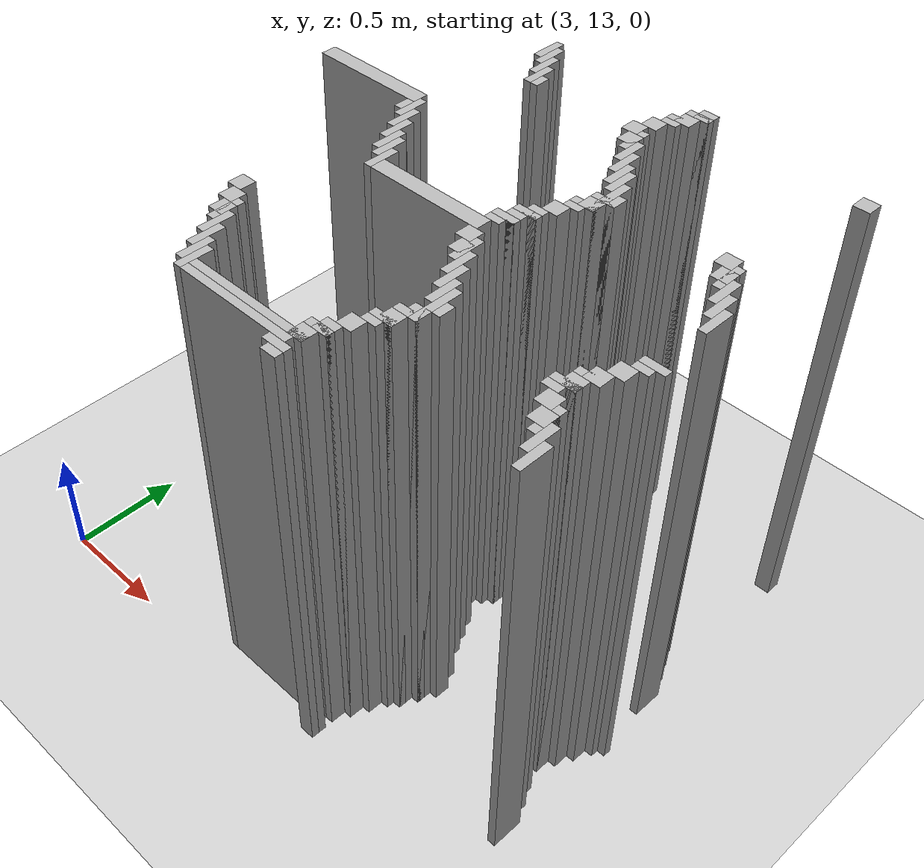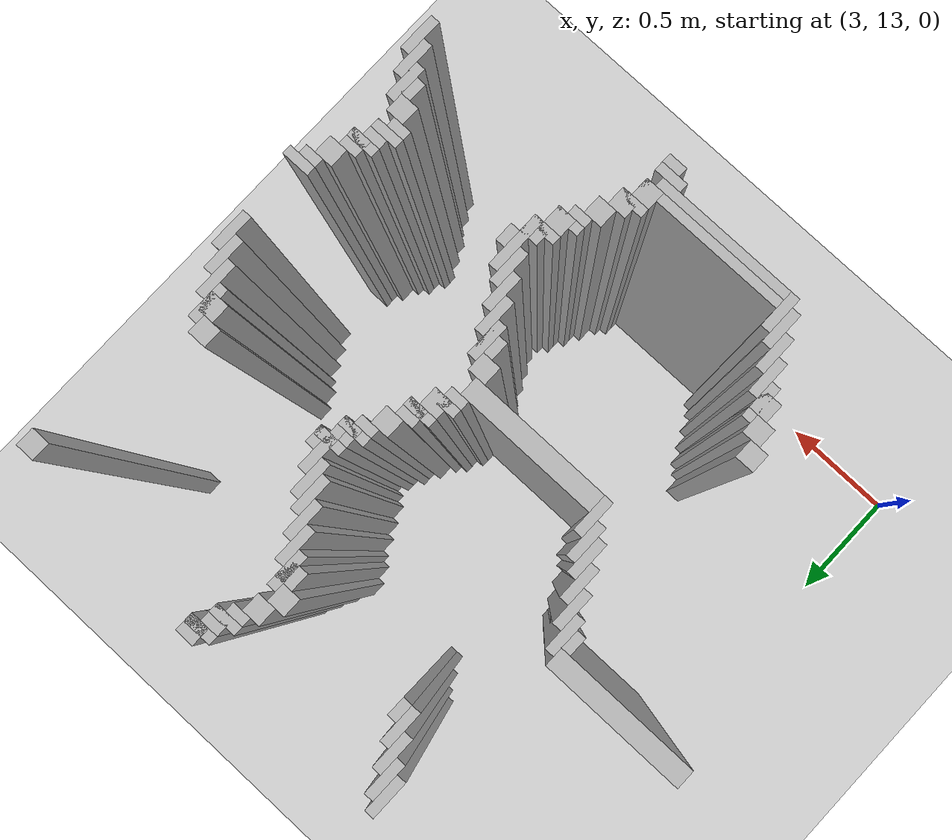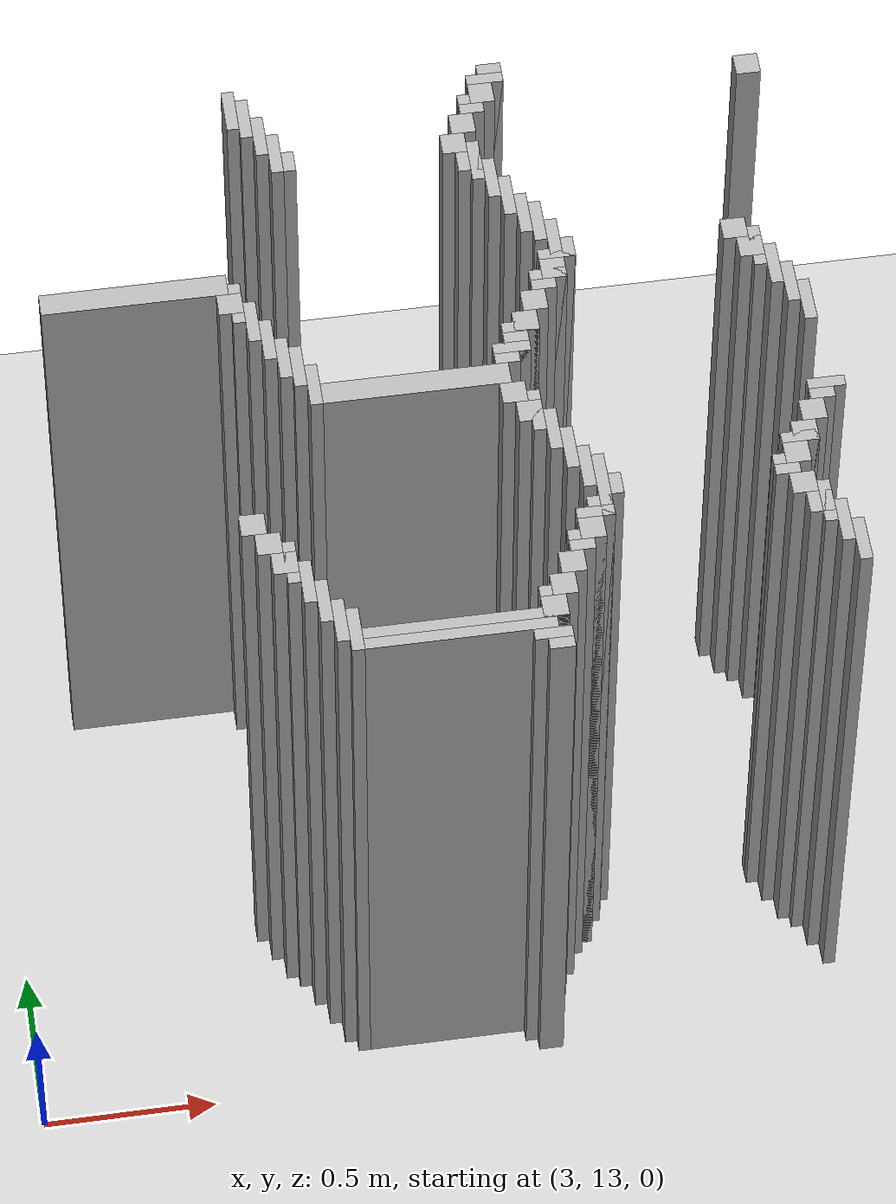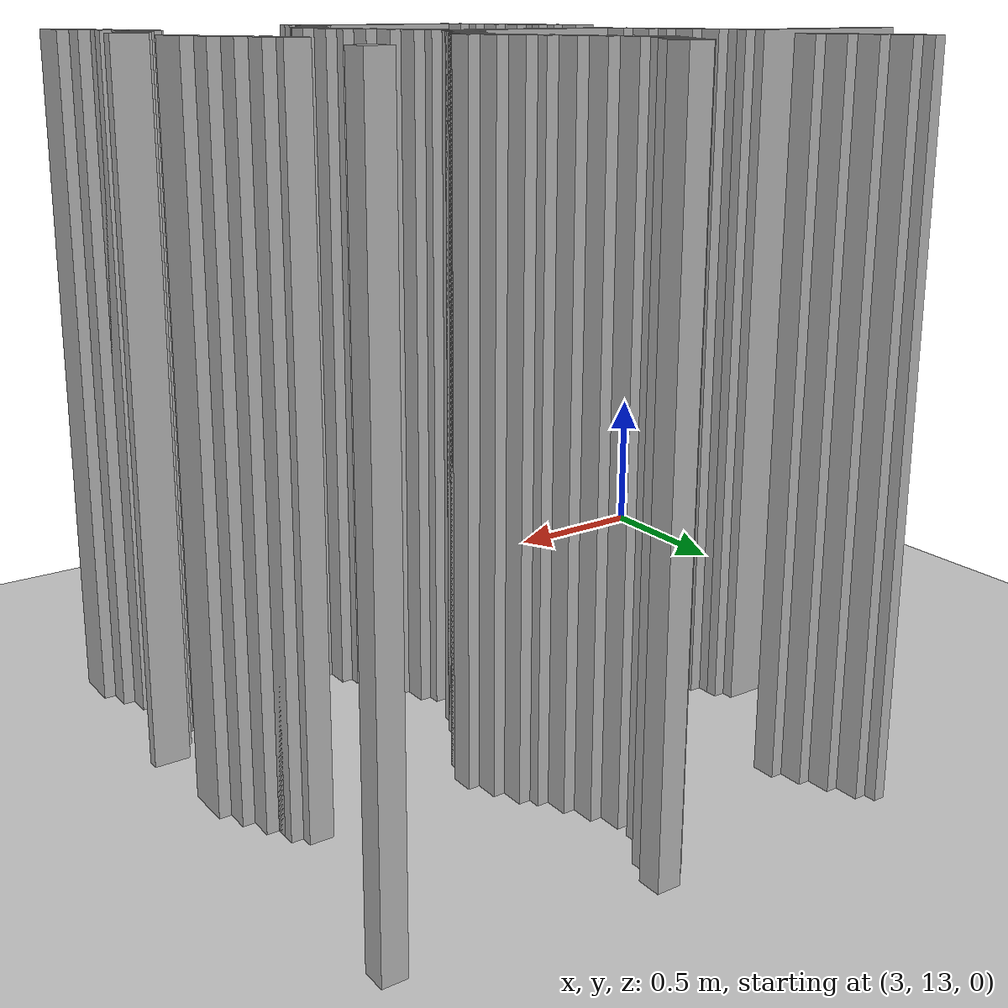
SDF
<sdf version="1.6">
 <world name="slam_world">
  <model name="ground_plane">
   <static>true</static>
   <link name="link">
    <collision name="collision">
     <geometry><plane><normal>0 0 1</normal><size>100 100</size></plane></geometry>
    </collision>
    <visual name="visual">
     <geometry><plane><normal>0 0 1</normal><size>100 100</size></plane></geometry>
     <material>
      <ambient>0.8 0.8 0.8 1</ambient>
      <diffuse>0.8 0.8 0.8 1</diffuse>
      <specular>0.8 0.8 0.8 1</specular>
     </material>
    </visual>
   </link>
  </model>
  <model name="wall_784">
   <static>true</static>
   <pose>3.845707656612529 15.034802784222737 1.0 0 0 0</pose>
   <link name="link">
    <collision name="collision">
     <geometry><box><size>0.03480278422273782 0.13921113689095127 2.0</size></box></geometry>
    </collision>
    <visual name="visual">
     <geometry><box><size>0.03480278422273782 0.13921113689095127 2.0</size></box></geometry>
     <material><ambient>0.5 0.5 0.5 1</ambient><diffuse>0.7 0.7 0.7 1</diffuse></material>
    </visual>
   </link>
  </model>
  <model name="wall_785">
   <static>true</static>
   <pose>4.593967517401392 15.069605568445475 1.0 0 0 0</pose>
   <link name="link">
    <collision name="collision">
     <geometry><box><size>0.06960556844547564 0.06960556844547564 2.0</size></box></geometry>
    </collision>
    <visual name="visual">
     <geometry><box><size>0.06960556844547564 0.06960556844547564 2.0</size></box></geometry>
     <material><ambient>0.5 0.5 0.5 1</ambient><diffuse>0.7 0.7 0.7 1</diffuse></material>
    </visual>
   </link>
  </model>
  <model name="wall_801">
   <static>true</static>
   <pose>3.8805104408352666 15.0 1.0 0 0 0</pose>
   <link name="link">
    <collision name="collision">
     <geometry><box><size>0.03480278422273782 0.13921113689095127 2.0</size></box></geometry>
    </collision>
    <visual name="visual">
     <geometry><box><size>0.03480278422273782 0.13921113689095127 2.0</size></box></geometry>
     <material><ambient>0.5 0.5 0.5 1</ambient><diffuse>0.7 0.7 0.7 1</diffuse></material>
    </visual>
   </link>
  </model>
  <model name="wall_802">
   <static>true</static>
   <pose>4.576566125290023 15.052204176334106 1.0 0 0 0</pose>
   <link name="link">
    <collision name="collision">
     <geometry><box><size>0.10440835266821345 0.03480278422273782 2.0</size></box></geometry>
    </collision>
    <visual name="visual">
     <geometry><box><size>0.10440835266821345 0.03480278422273782 2.0</size></box></geometry>
     <material><ambient>0.5 0.5 0.5 1</ambient><diffuse>0.7 0.7 0.7 1</diffuse></material>
    </visual>
   </link>
  </model>
  <model name="wall_817">
   <static>true</static>
   <pose>4.559164733178654 15.0 1.0 0 0 0</pose>
   <link name="link">
    <collision name="collision">
     <geometry><box><size>0.06960556844547564 0.06960556844547564 2.0</size></box></geometry>
    </collision>
    <visual name="visual">
     <geometry><box><size>0.06960556844547564 0.06960556844547564 2.0</size></box></geometry>
     <material><ambient>0.5 0.5 0.5 1</ambient><diffuse>0.7 0.7 0.7 1</diffuse></material>
    </visual>
   </link>
  </model>
  <model name="wall_818">
   <static>true</static>
   <pose>5.324825986078886 15.0 1.0 0 0 0</pose>
   <link name="link">
    <collision name="collision">
     <geometry><box><size>0.06960556844547564 0.06960556844547564 2.0</size></box></geometry>
    </collision>
    <visual name="visual">
     <geometry><box><size>0.06960556844547564 0.06960556844547564 2.0</size></box></geometry>
     <material><ambient>0.5 0.5 0.5 1</ambient><diffuse>0.7 0.7 0.7 1</diffuse></material>
    </visual>
   </link>
  </model>
  <model name="wall_828">
   <static>true</static>
   <pose>3.9153132250580045 14.930394431554523 1.0 0 0 0</pose>
   <link name="link">
    <collision name="collision">
     <geometry><box><size>0.03480278422273782 0.13921113689095127 2.0</size></box></geometry>
    </collision>
    <visual name="visual">
     <geometry><box><size>0.03480278422273782 0.13921113689095127 2.0</size></box></geometry>
     <material><ambient>0.5 0.5 0.5 1</ambient><diffuse>0.7 0.7 0.7 1</diffuse></material>
    </visual>
   </link>
  </model>
  <model name="wall_829">
   <static>true</static>
   <pose>4.541763341067285 14.982598607888631 1.0 0 0 0</pose>
   <link name="link">
    <collision name="collision">
     <geometry><box><size>0.10440835266821345 0.03480278422273782 2.0</size></box></geometry>
    </collision>
    <visual name="visual">
     <geometry><box><size>0.10440835266821345 0.03480278422273782 2.0</size></box></geometry>
     <material><ambient>0.5 0.5 0.5 1</ambient><diffuse>0.7 0.7 0.7 1</diffuse></material>
    </visual>
   </link>
  </model>
  <model name="wall_844">
   <static>true</static>
   <pose>4.524361948955916 14.947795823665892 1.0 0 0 0</pose>
   <link name="link">
    <collision name="collision">
     <geometry><box><size>0.06960556844547564 0.03480278422273782 2.0</size></box></geometry>
    </collision>
    <visual name="visual">
     <geometry><box><size>0.06960556844547564 0.03480278422273782 2.0</size></box></geometry>
     <material><ambient>0.5 0.5 0.5 1</ambient><diffuse>0.7 0.7 0.7 1</diffuse></material>
    </visual>
   </link>
  </model>
  <model name="wall_854">
   <static>true</static>
   <pose>3.9501160092807424 14.860788863109049 1.0 0 0 0</pose>
   <link name="link">
    <collision name="collision">
     <geometry><box><size>0.03480278422273782 0.13921113689095127 2.0</size></box></geometry>
    </collision>
    <visual name="visual">
     <geometry><box><size>0.03480278422273782 0.13921113689095127 2.0</size></box></geometry>
     <material><ambient>0.5 0.5 0.5 1</ambient><diffuse>0.7 0.7 0.7 1</diffuse></material>
    </visual>
   </link>
  </model>
  <model name="wall_855">
   <static>true</static>
   <pose>4.489559164733178 14.895591647331786 1.0 0 0 0</pose>
   <link name="link">
    <collision name="collision">
     <geometry><box><size>0.06960556844547564 0.06960556844547564 2.0</size></box></geometry>
    </collision>
    <visual name="visual">
     <geometry><box><size>0.06960556844547564 0.06960556844547564 2.0</size></box></geometry>
     <material><ambient>0.5 0.5 0.5 1</ambient><diffuse>0.7 0.7 0.7 1</diffuse></material>
    </visual>
   </link>
  </model>
  <model name="wall_878">
   <static>true</static>
   <pose>3.98491879350348 14.825986078886311 1.0 0 0 0</pose>
   <link name="link">
    <collision name="collision">
     <geometry><box><size>0.03480278422273782 0.06960556844547564 2.0</size></box></geometry>
    </collision>
    <visual name="visual">
     <geometry><box><size>0.03480278422273782 0.06960556844547564 2.0</size></box></geometry>
     <material><ambient>0.5 0.5 0.5 1</ambient><diffuse>0.7 0.7 0.7 1</diffuse></material>
    </visual>
   </link>
  </model>
  <model name="wall_879">
   <static>true</static>
   <pose>4.454756380510441 14.825986078886311 1.0 0 0 0</pose>
   <link name="link">
    <collision name="collision">
     <geometry><box><size>0.06960556844547564 0.06960556844547564 2.0</size></box></geometry>
    </collision>
    <visual name="visual">
     <geometry><box><size>0.06960556844547564 0.06960556844547564 2.0</size></box></geometry>
     <material><ambient>0.5 0.5 0.5 1</ambient><diffuse>0.7 0.7 0.7 1</diffuse></material>
    </visual>
   </link>
  </model>
  <model name="wall_894">
   <static>true</static>
   <pose>4.506960556844548 14.756380510440835 1.0 0 0 0</pose>
   <link name="link">
    <collision name="collision">
     <geometry><box><size>0.03480278422273782 0.13921113689095127 2.0</size></box></geometry>
    </collision>
    <visual name="visual">
     <geometry><box><size>0.03480278422273782 0.13921113689095127 2.0</size></box></geometry>
     <material><ambient>0.5 0.5 0.5 1</ambient><diffuse>0.7 0.7 0.7 1</diffuse></material>
    </visual>
   </link>
  </model>
  <model name="wall_907">
   <static>true</static>
   <pose>4.489559164733178 14.756380510440835 1.0 0 0 0</pose>
   <link name="link">
    <collision name="collision">
     <geometry><box><size>0.06960556844547564 0.06960556844547564 2.0</size></box></geometry>
    </collision>
    <visual name="visual">
     <geometry><box><size>0.06960556844547564 0.06960556844547564 2.0</size></box></geometry>
     <material><ambient>0.5 0.5 0.5 1</ambient><diffuse>0.7 0.7 0.7 1</diffuse></material>
    </visual>
   </link>
  </model>
  <model name="wall_922">
   <static>true</static>
   <pose>4.541763341067285 14.68677494199536 1.0 0 0 0</pose>
   <link name="link">
    <collision name="collision">
     <geometry><box><size>0.03480278422273782 0.13921113689095127 2.0</size></box></geometry>
    </collision>
    <visual name="visual">
     <geometry><box><size>0.03480278422273782 0.13921113689095127 2.0</size></box></geometry>
     <material><ambient>0.5 0.5 0.5 1</ambient><diffuse>0.7 0.7 0.7 1</diffuse></material>
    </visual>
   </link>
  </model>
  <model name="wall_945">
   <static>true</static>
   <pose>4.576566125290023 14.617169373549883 1.0 0 0 0</pose>
   <link name="link">
    <collision name="collision">
     <geometry><box><size>0.03480278422273782 0.13921113689095127 2.0</size></box></geometry>
    </collision>
    <visual name="visual">
     <geometry><box><size>0.03480278422273782 0.13921113689095127 2.0</size></box></geometry>
     <material><ambient>0.5 0.5 0.5 1</ambient><diffuse>0.7 0.7 0.7 1</diffuse></material>
    </visual>
   </link>
  </model>
  <model name="wall_960">
   <static>true</static>
   <pose>4.611368909512761 14.547563805104408 1.0 0 0 0</pose>
   <link name="link">
    <collision name="collision">
     <geometry><box><size>0.03480278422273782 0.13921113689095127 2.0</size></box></geometry>
    </collision>
    <visual name="visual">
     <geometry><box><size>0.03480278422273782 0.13921113689095127 2.0</size></box></geometry>
     <material><ambient>0.5 0.5 0.5 1</ambient><diffuse>0.7 0.7 0.7 1</diffuse></material>
    </visual>
   </link>
  </model>
  <model name="wall_975">
   <static>true</static>
   <pose>4.646171693735498 14.512761020881669 1.0 0 0 0</pose>
   <link name="link">
    <collision name="collision">
     <geometry><box><size>0.03480278422273782 0.13921113689095127 2.0</size></box></geometry>
    </collision>
    <visual name="visual">
     <geometry><box><size>0.03480278422273782 0.13921113689095127 2.0</size></box></geometry>
     <material><ambient>0.5 0.5 0.5 1</ambient><diffuse>0.7 0.7 0.7 1</diffuse></material>
    </visual>
   </link>
  </model>
  <model name="wall_996">
   <static>true</static>
   <pose>4.6809744779582365 14.408352668213457 1.0 0 0 0</pose>
   <link name="link">
    <collision name="collision">
     <geometry><box><size>0.03480278422273782 0.2088167053364269 2.0</size></box></geometry>
    </collision>
    <visual name="visual">
     <geometry><box><size>0.03480278422273782 0.2088167053364269 2.0</size></box></geometry>
     <material><ambient>0.5 0.5 0.5 1</ambient><diffuse>0.7 0.7 0.7 1</diffuse></material>
    </visual>
   </link>
  </model>
  <model name="wall_1015">
   <static>true</static>
   <pose>3.4976798143851506 14.408352668213457 1.0 0 0 0</pose>
   <link name="link">
    <collision name="collision">
     <geometry><box><size>0.5220417633410672 0.06960556844547564 2.0</size></box></geometry>
    </collision>
    <visual name="visual">
     <geometry><box><size>0.5220417633410672 0.06960556844547564 2.0</size></box></geometry>
     <material><ambient>0.5 0.5 0.5 1</ambient><diffuse>0.7 0.7 0.7 1</diffuse></material>
    </visual>
   </link>
  </model>
  <model name="wall_1016">
   <static>true</static>
   <pose>4.715777262180974 14.408352668213457 1.0 0 0 0</pose>
   <link name="link">
    <collision name="collision">
     <geometry><box><size>0.03480278422273782 0.06960556844547564 2.0</size></box></geometry>
    </collision>
    <visual name="visual">
     <geometry><box><size>0.03480278422273782 0.06960556844547564 2.0</size></box></geometry>
     <material><ambient>0.5 0.5 0.5 1</ambient><diffuse>0.7 0.7 0.7 1</diffuse></material>
    </visual>
   </link>
  </model>
  <model name="wall_1017">
   <static>true</static>
   <pose>5.185614849187935 14.408352668213457 1.0 0 0 0</pose>
   <link name="link">
    <collision name="collision">
     <geometry><box><size>0.06960556844547564 0.06960556844547564 2.0</size></box></geometry>
    </collision>
    <visual name="visual">
     <geometry><box><size>0.06960556844547564 0.06960556844547564 2.0</size></box></geometry>
     <material><ambient>0.5 0.5 0.5 1</ambient><diffuse>0.7 0.7 0.7 1</diffuse></material>
    </visual>
   </link>
  </model>
  <model name="wall_1028">
   <static>true</static>
   <pose>3.776102088167053 14.33874709976798 1.0 0 0 0</pose>
   <link name="link">
    <collision name="collision">
     <geometry><box><size>0.03480278422273782 0.13921113689095127 2.0</size></box></geometry>
    </collision>
    <visual name="visual">
     <geometry><box><size>0.03480278422273782 0.13921113689095127 2.0</size></box></geometry>
     <material><ambient>0.5 0.5 0.5 1</ambient><diffuse>0.7 0.7 0.7 1</diffuse></material>
    </visual>
   </link>
  </model>
  <model name="wall_1029">
   <static>true</static>
   <pose>4.6809744779582365 14.390951276102088 1.0 0 0 0</pose>
   <link name="link">
    <collision name="collision">
     <geometry><box><size>0.10440835266821345 0.03480278422273782 2.0</size></box></geometry>
    </collision>
    <visual name="visual">
     <geometry><box><size>0.10440835266821345 0.03480278422273782 2.0</size></box></geometry>
     <material><ambient>0.5 0.5 0.5 1</ambient><diffuse>0.7 0.7 0.7 1</diffuse></material>
    </visual>
   </link>
  </model>
  <model name="wall_1030">
   <static>true</static>
   <pose>5.237819025522041 14.33874709976798 1.0 0 0 0</pose>
   <link name="link">
    <collision name="collision">
     <geometry><box><size>0.03480278422273782 0.13921113689095127 2.0</size></box></geometry>
    </collision>
    <visual name="visual">
     <geometry><box><size>0.03480278422273782 0.13921113689095127 2.0</size></box></geometry>
     <material><ambient>0.5 0.5 0.5 1</ambient><diffuse>0.7 0.7 0.7 1</diffuse></material>
    </visual>
   </link>
  </model>
  <model name="wall_1040">
   <static>true</static>
   <pose>3.7587006960556844 14.33874709976798 1.0 0 0 0</pose>
   <link name="link">
    <collision name="collision">
     <geometry><box><size>0.06960556844547564 0.06960556844547564 2.0</size></box></geometry>
    </collision>
    <visual name="visual">
     <geometry><box><size>0.06960556844547564 0.06960556844547564 2.0</size></box></geometry>
     <material><ambient>0.5 0.5 0.5 1</ambient><diffuse>0.7 0.7 0.7 1</diffuse></material>
    </visual>
   </link>
  </model>
  <model name="wall_1041">
   <static>true</static>
   <pose>4.663573085846868 14.33874709976798 1.0 0 0 0</pose>
   <link name="link">
    <collision name="collision">
     <geometry><box><size>0.06960556844547564 0.06960556844547564 2.0</size></box></geometry>
    </collision>
    <visual name="visual">
     <geometry><box><size>0.06960556844547564 0.06960556844547564 2.0</size></box></geometry>
     <material><ambient>0.5 0.5 0.5 1</ambient><diffuse>0.7 0.7 0.7 1</diffuse></material>
    </visual>
   </link>
  </model>
  <model name="wall_1042">
   <static>true</static>
   <pose>5.220417633410673 14.33874709976798 1.0 0 0 0</pose>
   <link name="link">
    <collision name="collision">
     <geometry><box><size>0.06960556844547564 0.06960556844547564 2.0</size></box></geometry>
    </collision>
    <visual name="visual">
     <geometry><box><size>0.06960556844547564 0.06960556844547564 2.0</size></box></geometry>
     <material><ambient>0.5 0.5 0.5 1</ambient><diffuse>0.7 0.7 0.7 1</diffuse></material>
    </visual>
   </link>
  </model>
  <model name="wall_1053">
   <static>true</static>
   <pose>3.810904872389791 14.269141531322505 1.0 0 0 0</pose>
   <link name="link">
    <collision name="collision">
     <geometry><box><size>0.03480278422273782 0.13921113689095127 2.0</size></box></geometry>
    </collision>
    <visual name="visual">
     <geometry><box><size>0.03480278422273782 0.13921113689095127 2.0</size></box></geometry>
     <material><ambient>0.5 0.5 0.5 1</ambient><diffuse>0.7 0.7 0.7 1</diffuse></material>
    </visual>
   </link>
  </model>
  <model name="wall_1054">
   <static>true</static>
   <pose>4.646171693735498 14.321345707656612 1.0 0 0 0</pose>
   <link name="link">
    <collision name="collision">
     <geometry><box><size>0.10440835266821345 0.03480278422273782 2.0</size></box></geometry>
    </collision>
    <visual name="visual">
     <geometry><box><size>0.10440835266821345 0.03480278422273782 2.0</size></box></geometry>
     <material><ambient>0.5 0.5 0.5 1</ambient><diffuse>0.7 0.7 0.7 1</diffuse></material>
    </visual>
   </link>
  </model>
  <model name="wall_1055">
   <static>true</static>
   <pose>5.27262180974478 14.269141531322505 1.0 0 0 0</pose>
   <link name="link">
    <collision name="collision">
     <geometry><box><size>0.03480278422273782 0.13921113689095127 2.0</size></box></geometry>
    </collision>
    <visual name="visual">
     <geometry><box><size>0.03480278422273782 0.13921113689095127 2.0</size></box></geometry>
     <material><ambient>0.5 0.5 0.5 1</ambient><diffuse>0.7 0.7 0.7 1</diffuse></material>
    </visual>
   </link>
  </model>
  <model name="wall_1066">
   <static>true</static>
   <pose>4.6287703016241295 14.286542923433874 1.0 0 0 0</pose>
   <link name="link">
    <collision name="collision">
     <geometry><box><size>0.06960556844547564 0.03480278422273782 2.0</size></box></geometry>
    </collision>
    <visual name="visual">
     <geometry><box><size>0.06960556844547564 0.03480278422273782 2.0</size></box></geometry>
     <material><ambient>0.5 0.5 0.5 1</ambient><diffuse>0.7 0.7 0.7 1</diffuse></material>
    </visual>
   </link>
  </model>
  <model name="wall_1074">
   <static>true</static>
   <pose>3.845707656612529 14.199535962877029 1.0 0 0 0</pose>
   <link name="link">
    <collision name="collision">
     <geometry><box><size>0.03480278422273782 0.13921113689095127 2.0</size></box></geometry>
    </collision>
    <visual name="visual">
     <geometry><box><size>0.03480278422273782 0.13921113689095127 2.0</size></box></geometry>
     <material><ambient>0.5 0.5 0.5 1</ambient><diffuse>0.7 0.7 0.7 1</diffuse></material>
    </visual>
   </link>
  </model>
  <model name="wall_1075">
   <static>true</static>
   <pose>4.593967517401392 14.234338747099768 1.0 0 0 0</pose>
   <link name="link">
    <collision name="collision">
     <geometry><box><size>0.06960556844547564 0.06960556844547564 2.0</size></box></geometry>
    </collision>
    <visual name="visual">
     <geometry><box><size>0.06960556844547564 0.06960556844547564 2.0</size></box></geometry>
     <material><ambient>0.5 0.5 0.5 1</ambient><diffuse>0.7 0.7 0.7 1</diffuse></material>
    </visual>
   </link>
  </model>
  <model name="wall_1076">
   <static>true</static>
   <pose>5.307424593967517 14.199535962877029 1.0 0 0 0</pose>
   <link name="link">
    <collision name="collision">
     <geometry><box><size>0.03480278422273782 0.13921113689095127 2.0</size></box></geometry>
    </collision>
    <visual name="visual">
     <geometry><box><size>0.03480278422273782 0.13921113689095127 2.0</size></box></geometry>
     <material><ambient>0.5 0.5 0.5 1</ambient><diffuse>0.7 0.7 0.7 1</diffuse></material>
    </visual>
   </link>
  </model>
  <model name="wall_1087">
   <static>true</static>
   <pose>3.8805104408352666 14.129930394431554 1.0 0 0 0</pose>
   <link name="link">
    <collision name="collision">
     <geometry><box><size>0.03480278422273782 0.13921113689095127 2.0</size></box></geometry>
    </collision>
    <visual name="visual">
     <geometry><box><size>0.03480278422273782 0.13921113689095127 2.0</size></box></geometry>
     <material><ambient>0.5 0.5 0.5 1</ambient><diffuse>0.7 0.7 0.7 1</diffuse></material>
    </visual>
   </link>
  </model>
  <model name="wall_1088">
   <static>true</static>
   <pose>4.559164733178654 14.164733178654291 1.0 0 0 0</pose>
   <link name="link">
    <collision name="collision">
     <geometry><box><size>0.06960556844547564 0.06960556844547564 2.0</size></box></geometry>
    </collision>
    <visual name="visual">
     <geometry><box><size>0.06960556844547564 0.06960556844547564 2.0</size></box></geometry>
     <material><ambient>0.5 0.5 0.5 1</ambient><diffuse>0.7 0.7 0.7 1</diffuse></material>
    </visual>
   </link>
  </model>
  <model name="wall_1089">
   <static>true</static>
   <pose>5.342227378190255 14.129930394431554 1.0 0 0 0</pose>
   <link name="link">
    <collision name="collision">
     <geometry><box><size>0.03480278422273782 0.13921113689095127 2.0</size></box></geometry>
    </collision>
    <visual name="visual">
     <geometry><box><size>0.03480278422273782 0.13921113689095127 2.0</size></box></geometry>
     <material><ambient>0.5 0.5 0.5 1</ambient><diffuse>0.7 0.7 0.7 1</diffuse></material>
    </visual>
   </link>
  </model>
  <model name="wall_1100">
   <static>true</static>
   <pose>3.9153132250580045 14.095127610208817 1.0 0 0 0</pose>
   <link name="link">
    <collision name="collision">
     <geometry><box><size>0.03480278422273782 0.13921113689095127 2.0</size></box></geometry>
    </collision>
    <visual name="visual">
     <geometry><box><size>0.03480278422273782 0.13921113689095127 2.0</size></box></geometry>
     <material><ambient>0.5 0.5 0.5 1</ambient><diffuse>0.7 0.7 0.7 1</diffuse></material>
    </visual>
   </link>
  </model>
  <model name="wall_1101">
   <static>true</static>
   <pose>4.541763341067285 14.147331786542923 1.0 0 0 0</pose>
   <link name="link">
    <collision name="collision">
     <geometry><box><size>0.10440835266821345 0.03480278422273782 2.0</size></box></geometry>
    </collision>
    <visual name="visual">
     <geometry><box><size>0.10440835266821345 0.03480278422273782 2.0</size></box></geometry>
     <material><ambient>0.5 0.5 0.5 1</ambient><diffuse>0.7 0.7 0.7 1</diffuse></material>
    </visual>
   </link>
  </model>
  <model name="wall_1113">
   <static>true</static>
   <pose>4.524361948955916 14.095127610208817 1.0 0 0 0</pose>
   <link name="link">
    <collision name="collision">
     <geometry><box><size>0.06960556844547564 0.06960556844547564 2.0</size></box></geometry>
    </collision>
    <visual name="visual">
     <geometry><box><size>0.06960556844547564 0.06960556844547564 2.0</size></box></geometry>
     <material><ambient>0.5 0.5 0.5 1</ambient><diffuse>0.7 0.7 0.7 1</diffuse></material>
    </visual>
   </link>
  </model>
  <model name="wall_1120">
   <static>true</static>
   <pose>3.9501160092807424 14.02552204176334 1.0 0 0 0</pose>
   <link name="link">
    <collision name="collision">
     <geometry><box><size>0.03480278422273782 0.13921113689095127 2.0</size></box></geometry>
    </collision>
    <visual name="visual">
     <geometry><box><size>0.03480278422273782 0.13921113689095127 2.0</size></box></geometry>
     <material><ambient>0.5 0.5 0.5 1</ambient><diffuse>0.7 0.7 0.7 1</diffuse></material>
    </visual>
   </link>
  </model>
  <model name="wall_1121">
   <static>true</static>
   <pose>4.506960556844548 14.077726218097448 1.0 0 0 0</pose>
   <link name="link">
    <collision name="collision">
     <geometry><box><size>0.10440835266821345 0.03480278422273782 2.0</size></box></geometry>
    </collision>
    <visual name="visual">
     <geometry><box><size>0.10440835266821345 0.03480278422273782 2.0</size></box></geometry>
     <material><ambient>0.5 0.5 0.5 1</ambient><diffuse>0.7 0.7 0.7 1</diffuse></material>
    </visual>
   </link>
  </model>
  <model name="wall_1133">
   <static>true</static>
   <pose>4.489559164733178 14.042923433874709 1.0 0 0 0</pose>
   <link name="link">
    <collision name="collision">
     <geometry><box><size>0.06960556844547564 0.03480278422273782 2.0</size></box></geometry>
    </collision>
    <visual name="visual">
     <geometry><box><size>0.06960556844547564 0.03480278422273782 2.0</size></box></geometry>
     <material><ambient>0.5 0.5 0.5 1</ambient><diffuse>0.7 0.7 0.7 1</diffuse></material>
    </visual>
   </link>
  </model>
  <model name="wall_1141">
   <static>true</static>
   <pose>4.228538283062645 13.990719257540603 1.0 0 0 0</pose>
   <link name="link">
    <collision name="collision">
     <geometry><box><size>0.5220417633410672 0.06960556844547564 2.0</size></box></geometry>
    </collision>
    <visual name="visual">
     <geometry><box><size>0.5220417633410672 0.06960556844547564 2.0</size></box></geometry>
     <material><ambient>0.5 0.5 0.5 1</ambient><diffuse>0.7 0.7 0.7 1</diffuse></material>
    </visual>
   </link>
  </model>
  <model name="wall_1157">
   <static>true</static>
   <pose>4.489559164733178 13.921113689095128 1.0 0 0 0</pose>
   <link name="link">
    <collision name="collision">
     <geometry><box><size>0.06960556844547564 0.06960556844547564 2.0</size></box></geometry>
    </collision>
    <visual name="visual">
     <geometry><box><size>0.06960556844547564 0.06960556844547564 2.0</size></box></geometry>
     <material><ambient>0.5 0.5 0.5 1</ambient><diffuse>0.7 0.7 0.7 1</diffuse></material>
    </visual>
   </link>
  </model>
  <model name="wall_1173">
   <static>true</static>
   <pose>4.541763341067285 13.851508120649651 1.0 0 0 0</pose>
   <link name="link">
    <collision name="collision">
     <geometry><box><size>0.03480278422273782 0.13921113689095127 2.0</size></box></geometry>
    </collision>
    <visual name="visual">
     <geometry><box><size>0.03480278422273782 0.13921113689095127 2.0</size></box></geometry>
     <material><ambient>0.5 0.5 0.5 1</ambient><diffuse>0.7 0.7 0.7 1</diffuse></material>
    </visual>
   </link>
  </model>
  <model name="wall_1189">
   <static>true</static>
   <pose>4.524361948955916 13.851508120649651 1.0 0 0 0</pose>
   <link name="link">
    <collision name="collision">
     <geometry><box><size>0.06960556844547564 0.06960556844547564 2.0</size></box></geometry>
    </collision>
    <visual name="visual">
     <geometry><box><size>0.06960556844547564 0.06960556844547564 2.0</size></box></geometry>
     <material><ambient>0.5 0.5 0.5 1</ambient><diffuse>0.7 0.7 0.7 1</diffuse></material>
    </visual>
   </link>
  </model>
  <model name="wall_1205">
   <static>true</static>
   <pose>4.576566125290023 13.781902552204176 1.0 0 0 0</pose>
   <link name="link">
    <collision name="collision">
     <geometry><box><size>0.03480278422273782 0.13921113689095127 2.0</size></box></geometry>
    </collision>
    <visual name="visual">
     <geometry><box><size>0.03480278422273782 0.13921113689095127 2.0</size></box></geometry>
     <material><ambient>0.5 0.5 0.5 1</ambient><diffuse>0.7 0.7 0.7 1</diffuse></material>
    </visual>
   </link>
  </model>
  <model name="wall_1206">
   <static>true</static>
   <pose>5.342227378190255 13.834106728538282 1.0 0 0 0</pose>
   <link name="link">
    <collision name="collision">
     <geometry><box><size>0.10440835266821345 0.03480278422273782 2.0</size></box></geometry>
    </collision>
    <visual name="visual">
     <geometry><box><size>0.10440835266821345 0.03480278422273782 2.0</size></box></geometry>
     <material><ambient>0.5 0.5 0.5 1</ambient><diffuse>0.7 0.7 0.7 1</diffuse></material>
    </visual>
   </link>
  </model>
  <model name="wall_1218">
   <static>true</static>
   <pose>5.324825986078886 13.799303944315545 1.0 0 0 0</pose>
   <link name="link">
    <collision name="collision">
     <geometry><box><size>0.06960556844547564 0.03480278422273782 2.0</size></box></geometry>
    </collision>
    <visual name="visual">
     <geometry><box><size>0.06960556844547564 0.03480278422273782 2.0</size></box></geometry>
     <material><ambient>0.5 0.5 0.5 1</ambient><diffuse>0.7 0.7 0.7 1</diffuse></material>
    </visual>
   </link>
  </model>
  <model name="wall_1229">
   <static>true</static>
   <pose>4.611368909512761 13.7122969837587 1.0 0 0 0</pose>
   <link name="link">
    <collision name="collision">
     <geometry><box><size>0.03480278422273782 0.13921113689095127 2.0</size></box></geometry>
    </collision>
    <visual name="visual">
     <geometry><box><size>0.03480278422273782 0.13921113689095127 2.0</size></box></geometry>
     <material><ambient>0.5 0.5 0.5 1</ambient><diffuse>0.7 0.7 0.7 1</diffuse></material>
    </visual>
   </link>
  </model>
  <model name="wall_1230">
   <static>true</static>
   <pose>5.290023201856148 13.747099767981437 1.0 0 0 0</pose>
   <link name="link">
    <collision name="collision">
     <geometry><box><size>0.06960556844547564 0.06960556844547564 2.0</size></box></geometry>
    </collision>
    <visual name="visual">
     <geometry><box><size>0.06960556844547564 0.06960556844547564 2.0</size></box></geometry>
     <material><ambient>0.5 0.5 0.5 1</ambient><diffuse>0.7 0.7 0.7 1</diffuse></material>
    </visual>
   </link>
  </model>
  <model name="wall_1245">
   <static>true</static>
   <pose>4.646171693735498 13.642691415313225 1.0 0 0 0</pose>
   <link name="link">
    <collision name="collision">
     <geometry><box><size>0.03480278422273782 0.13921113689095127 2.0</size></box></geometry>
    </collision>
    <visual name="visual">
     <geometry><box><size>0.03480278422273782 0.13921113689095127 2.0</size></box></geometry>
     <material><ambient>0.5 0.5 0.5 1</ambient><diffuse>0.7 0.7 0.7 1</diffuse></material>
    </visual>
   </link>
  </model>
  <model name="wall_1246">
   <static>true</static>
   <pose>5.25522041763341 13.677494199535962 1.0 0 0 0</pose>
   <link name="link">
    <collision name="collision">
     <geometry><box><size>0.06960556844547564 0.06960556844547564 2.0</size></box></geometry>
    </collision>
    <visual name="visual">
     <geometry><box><size>0.06960556844547564 0.06960556844547564 2.0</size></box></geometry>
     <material><ambient>0.5 0.5 0.5 1</ambient><diffuse>0.7 0.7 0.7 1</diffuse></material>
    </visual>
   </link>
  </model>
  <model name="wall_1261">
   <static>true</static>
   <pose>4.6809744779582365 13.573085846867748 1.0 0 0 0</pose>
   <link name="link">
    <collision name="collision">
     <geometry><box><size>0.03480278422273782 0.2088167053364269 2.0</size></box></geometry>
    </collision>
    <visual name="visual">
     <geometry><box><size>0.03480278422273782 0.2088167053364269 2.0</size></box></geometry>
     <material><ambient>0.5 0.5 0.5 1</ambient><diffuse>0.7 0.7 0.7 1</diffuse></material>
    </visual>
   </link>
  </model>
  <model name="wall_1262">
   <static>true</static>
   <pose>5.237819025522041 13.660092807424594 1.0 0 0 0</pose>
   <link name="link">
    <collision name="collision">
     <geometry><box><size>0.10440835266821345 0.03480278422273782 2.0</size></box></geometry>
    </collision>
    <visual name="visual">
     <geometry><box><size>0.10440835266821345 0.03480278422273782 2.0</size></box></geometry>
     <material><ambient>0.5 0.5 0.5 1</ambient><diffuse>0.7 0.7 0.7 1</diffuse></material>
    </visual>
   </link>
  </model>
  <model name="wall_1274">
   <static>true</static>
   <pose>5.220417633410673 13.607888631090487 1.0 0 0 0</pose>
   <link name="link">
    <collision name="collision">
     <geometry><box><size>0.06960556844547564 0.06960556844547564 2.0</size></box></geometry>
    </collision>
    <visual name="visual">
     <geometry><box><size>0.06960556844547564 0.06960556844547564 2.0</size></box></geometry>
     <material><ambient>0.5 0.5 0.5 1</ambient><diffuse>0.7 0.7 0.7 1</diffuse></material>
    </visual>
   </link>
  </model>
  <model name="wall_1284">
   <static>true</static>
   <pose>3.7238979118329465 13.573085846867748 1.0 0 0 0</pose>
   <link name="link">
    <collision name="collision">
     <geometry><box><size>0.06960556844547564 0.06960556844547564 2.0</size></box></geometry>
    </collision>
    <visual name="visual">
     <geometry><box><size>0.06960556844547564 0.06960556844547564 2.0</size></box></geometry>
     <material><ambient>0.5 0.5 0.5 1</ambient><diffuse>0.7 0.7 0.7 1</diffuse></material>
    </visual>
   </link>
  </model>
  <model name="wall_1285">
   <static>true</static>
   <pose>4.715777262180974 13.573085846867748 1.0 0 0 0</pose>
   <link name="link">
    <collision name="collision">
     <geometry><box><size>0.03480278422273782 0.06960556844547564 2.0</size></box></geometry>
    </collision>
    <visual name="visual">
     <geometry><box><size>0.03480278422273782 0.06960556844547564 2.0</size></box></geometry>
     <material><ambient>0.5 0.5 0.5 1</ambient><diffuse>0.7 0.7 0.7 1</diffuse></material>
    </visual>
   </link>
  </model>
  <model name="wall_1286">
   <static>true</static>
   <pose>5.203016241299304 13.590487238979117 1.0 0 0 0</pose>
   <link name="link">
    <collision name="collision">
     <geometry><box><size>0.10440835266821345 0.03480278422273782 2.0</size></box></geometry>
    </collision>
    <visual name="visual">
     <geometry><box><size>0.10440835266821345 0.03480278422273782 2.0</size></box></geometry>
     <material><ambient>0.5 0.5 0.5 1</ambient><diffuse>0.7 0.7 0.7 1</diffuse></material>
    </visual>
   </link>
  </model>
  <model name="wall_1297">
   <static>true</static>
   <pose>5.185614849187935 13.55568445475638 1.0 0 0 0</pose>
   <link name="link">
    <collision name="collision">
     <geometry><box><size>0.06960556844547564 0.03480278422273782 2.0</size></box></geometry>
    </collision>
    <visual name="visual">
     <geometry><box><size>0.06960556844547564 0.03480278422273782 2.0</size></box></geometry>
     <material><ambient>0.5 0.5 0.5 1</ambient><diffuse>0.7 0.7 0.7 1</diffuse></material>
    </visual>
   </link>
  </model>
  <model name="wall_1305">
   <static>true</static>
   <pose>3.7587006960556844 13.503480278422273 1.0 0 0 0</pose>
   <link name="link">
    <collision name="collision">
     <geometry><box><size>0.06960556844547564 0.06960556844547564 2.0</size></box></geometry>
    </collision>
    <visual name="visual">
     <geometry><box><size>0.06960556844547564 0.06960556844547564 2.0</size></box></geometry>
     <material><ambient>0.5 0.5 0.5 1</ambient><diffuse>0.7 0.7 0.7 1</diffuse></material>
    </visual>
   </link>
  </model>
  <model name="wall_1306">
   <static>true</static>
   <pose>4.663573085846868 13.503480278422273 1.0 0 0 0</pose>
   <link name="link">
    <collision name="collision">
     <geometry><box><size>0.06960556844547564 0.06960556844547564 2.0</size></box></geometry>
    </collision>
    <visual name="visual">
     <geometry><box><size>0.06960556844547564 0.06960556844547564 2.0</size></box></geometry>
     <material><ambient>0.5 0.5 0.5 1</ambient><diffuse>0.7 0.7 0.7 1</diffuse></material>
    </visual>
   </link>
  </model>
  <model name="wall_1307">
   <static>true</static>
   <pose>5.220417633410673 13.503480278422273 1.0 0 0 0</pose>
   <link name="link">
    <collision name="collision">
     <geometry><box><size>0.06960556844547564 0.06960556844547564 2.0</size></box></geometry>
    </collision>
    <visual name="visual">
     <geometry><box><size>0.06960556844547564 0.06960556844547564 2.0</size></box></geometry>
     <material><ambient>0.5 0.5 0.5 1</ambient><diffuse>0.7 0.7 0.7 1</diffuse></material>
    </visual>
   </link>
  </model>
  <model name="wall_1319">
   <static>true</static>
   <pose>3.810904872389791 13.433874709976797 1.0 0 0 0</pose>
   <link name="link">
    <collision name="collision">
     <geometry><box><size>0.03480278422273782 0.13921113689095127 2.0</size></box></geometry>
    </collision>
    <visual name="visual">
     <geometry><box><size>0.03480278422273782 0.13921113689095127 2.0</size></box></geometry>
     <material><ambient>0.5 0.5 0.5 1</ambient><diffuse>0.7 0.7 0.7 1</diffuse></material>
    </visual>
   </link>
  </model>
  <model name="wall_1320">
   <static>true</static>
   <pose>4.646171693735498 13.486078886310905 1.0 0 0 0</pose>
   <link name="link">
    <collision name="collision">
     <geometry><box><size>0.10440835266821345 0.03480278422273782 2.0</size></box></geometry>
    </collision>
    <visual name="visual">
     <geometry><box><size>0.10440835266821345 0.03480278422273782 2.0</size></box></geometry>
     <material><ambient>0.5 0.5 0.5 1</ambient><diffuse>0.7 0.7 0.7 1</diffuse></material>
    </visual>
   </link>
  </model>
  <model name="wall_1321">
   <static>true</static>
   <pose>5.27262180974478 13.433874709976797 1.0 0 0 0</pose>
   <link name="link">
    <collision name="collision">
     <geometry><box><size>0.03480278422273782 0.13921113689095127 2.0</size></box></geometry>
    </collision>
    <visual name="visual">
     <geometry><box><size>0.03480278422273782 0.13921113689095127 2.0</size></box></geometry>
     <material><ambient>0.5 0.5 0.5 1</ambient><diffuse>0.7 0.7 0.7 1</diffuse></material>
    </visual>
   </link>
  </model>
  <model name="wall_1333">
   <static>true</static>
   <pose>3.793503480278422 13.433874709976797 1.0 0 0 0</pose>
   <link name="link">
    <collision name="collision">
     <geometry><box><size>0.06960556844547564 0.06960556844547564 2.0</size></box></geometry>
    </collision>
    <visual name="visual">
     <geometry><box><size>0.06960556844547564 0.06960556844547564 2.0</size></box></geometry>
     <material><ambient>0.5 0.5 0.5 1</ambient><diffuse>0.7 0.7 0.7 1</diffuse></material>
    </visual>
   </link>
  </model>
  <model name="wall_1334">
   <static>true</static>
   <pose>4.6287703016241295 13.433874709976797 1.0 0 0 0</pose>
   <link name="link">
    <collision name="collision">
     <geometry><box><size>0.06960556844547564 0.06960556844547564 2.0</size></box></geometry>
    </collision>
    <visual name="visual">
     <geometry><box><size>0.06960556844547564 0.06960556844547564 2.0</size></box></geometry>
     <material><ambient>0.5 0.5 0.5 1</ambient><diffuse>0.7 0.7 0.7 1</diffuse></material>
    </visual>
   </link>
  </model>
  <model name="wall_1335">
   <static>true</static>
   <pose>5.25522041763341 13.433874709976797 1.0 0 0 0</pose>
   <link name="link">
    <collision name="collision">
     <geometry><box><size>0.06960556844547564 0.06960556844547564 2.0</size></box></geometry>
    </collision>
    <visual name="visual">
     <geometry><box><size>0.06960556844547564 0.06960556844547564 2.0</size></box></geometry>
     <material><ambient>0.5 0.5 0.5 1</ambient><diffuse>0.7 0.7 0.7 1</diffuse></material>
    </visual>
   </link>
  </model>
  <model name="wall_1347">
   <static>true</static>
   <pose>3.845707656612529 13.364269141531322 1.0 0 0 0</pose>
   <link name="link">
    <collision name="collision">
     <geometry><box><size>0.03480278422273782 0.13921113689095127 2.0</size></box></geometry>
    </collision>
    <visual name="visual">
     <geometry><box><size>0.03480278422273782 0.13921113689095127 2.0</size></box></geometry>
     <material><ambient>0.5 0.5 0.5 1</ambient><diffuse>0.7 0.7 0.7 1</diffuse></material>
    </visual>
   </link>
  </model>
  <model name="wall_1348">
   <static>true</static>
   <pose>4.611368909512761 13.416473317865428 1.0 0 0 0</pose>
   <link name="link">
    <collision name="collision">
     <geometry><box><size>0.10440835266821345 0.03480278422273782 2.0</size></box></geometry>
    </collision>
    <visual name="visual">
     <geometry><box><size>0.10440835266821345 0.03480278422273782 2.0</size></box></geometry>
     <material><ambient>0.5 0.5 0.5 1</ambient><diffuse>0.7 0.7 0.7 1</diffuse></material>
    </visual>
   </link>
  </model>
  <model name="wall_1349">
   <static>true</static>
   <pose>5.307424593967517 13.364269141531322 1.0 0 0 0</pose>
   <link name="link">
    <collision name="collision">
     <geometry><box><size>0.03480278422273782 0.13921113689095127 2.0</size></box></geometry>
    </collision>
    <visual name="visual">
     <geometry><box><size>0.03480278422273782 0.13921113689095127 2.0</size></box></geometry>
     <material><ambient>0.5 0.5 0.5 1</ambient><diffuse>0.7 0.7 0.7 1</diffuse></material>
    </visual>
   </link>
  </model>
  <model name="wall_1361">
   <static>true</static>
   <pose>4.593967517401392 13.38167053364269 1.0 0 0 0</pose>
   <link name="link">
    <collision name="collision">
     <geometry><box><size>0.06960556844547564 0.03480278422273782 2.0</size></box></geometry>
    </collision>
    <visual name="visual">
     <geometry><box><size>0.06960556844547564 0.03480278422273782 2.0</size></box></geometry>
     <material><ambient>0.5 0.5 0.5 1</ambient><diffuse>0.7 0.7 0.7 1</diffuse></material>
    </visual>
   </link>
  </model>
  <model name="wall_1370">
   <static>true</static>
   <pose>3.8805104408352666 13.294663573085847 1.0 0 0 0</pose>
   <link name="link">
    <collision name="collision">
     <geometry><box><size>0.03480278422273782 0.13921113689095127 2.0</size></box></geometry>
    </collision>
    <visual name="visual">
     <geometry><box><size>0.03480278422273782 0.13921113689095127 2.0</size></box></geometry>
     <material><ambient>0.5 0.5 0.5 1</ambient><diffuse>0.7 0.7 0.7 1</diffuse></material>
    </visual>
   </link>
  </model>
  <model name="wall_1371">
   <static>true</static>
   <pose>4.559164733178654 13.329466357308585 1.0 0 0 0</pose>
   <link name="link">
    <collision name="collision">
     <geometry><box><size>0.06960556844547564 0.06960556844547564 2.0</size></box></geometry>
    </collision>
    <visual name="visual">
     <geometry><box><size>0.06960556844547564 0.06960556844547564 2.0</size></box></geometry>
     <material><ambient>0.5 0.5 0.5 1</ambient><diffuse>0.7 0.7 0.7 1</diffuse></material>
    </visual>
   </link>
  </model>
  <model name="wall_1372">
   <static>true</static>
   <pose>5.342227378190255 13.294663573085847 1.0 0 0 0</pose>
   <link name="link">
    <collision name="collision">
     <geometry><box><size>0.03480278422273782 0.13921113689095127 2.0</size></box></geometry>
    </collision>
    <visual name="visual">
     <geometry><box><size>0.03480278422273782 0.13921113689095127 2.0</size></box></geometry>
     <material><ambient>0.5 0.5 0.5 1</ambient><diffuse>0.7 0.7 0.7 1</diffuse></material>
    </visual>
   </link>
  </model>
  <model name="wall_1384">
   <static>true</static>
   <pose>3.9153132250580045 13.22505800464037 1.0 0 0 0</pose>
   <link name="link">
    <collision name="collision">
     <geometry><box><size>0.03480278422273782 0.13921113689095127 2.0</size></box></geometry>
    </collision>
    <visual name="visual">
     <geometry><box><size>0.03480278422273782 0.13921113689095127 2.0</size></box></geometry>
     <material><ambient>0.5 0.5 0.5 1</ambient><diffuse>0.7 0.7 0.7 1</diffuse></material>
    </visual>
   </link>
  </model>
  <model name="wall_1385">
   <static>true</static>
   <pose>4.524361948955916 13.259860788863108 1.0 0 0 0</pose>
   <link name="link">
    <collision name="collision">
     <geometry><box><size>0.06960556844547564 0.06960556844547564 2.0</size></box></geometry>
    </collision>
    <visual name="visual">
     <geometry><box><size>0.06960556844547564 0.06960556844547564 2.0</size></box></geometry>
     <material><ambient>0.5 0.5 0.5 1</ambient><diffuse>0.7 0.7 0.7 1</diffuse></material>
    </visual>
   </link>
  </model>
  <model name="wall_1398">
   <static>true</static>
   <pose>3.9501160092807424 13.190255220417633 1.0 0 0 0</pose>
   <link name="link">
    <collision name="collision">
     <geometry><box><size>0.03480278422273782 0.13921113689095127 2.0</size></box></geometry>
    </collision>
    <visual name="visual">
     <geometry><box><size>0.03480278422273782 0.13921113689095127 2.0</size></box></geometry>
     <material><ambient>0.5 0.5 0.5 1</ambient><diffuse>0.7 0.7 0.7 1</diffuse></material>
    </visual>
   </link>
  </model>
  <model name="wall_1399">
   <static>true</static>
   <pose>4.506960556844548 13.24245939675174 1.0 0 0 0</pose>
   <link name="link">
    <collision name="collision">
     <geometry><box><size>0.10440835266821345 0.03480278422273782 2.0</size></box></geometry>
    </collision>
    <visual name="visual">
     <geometry><box><size>0.10440835266821345 0.03480278422273782 2.0</size></box></geometry>
     <material><ambient>0.5 0.5 0.5 1</ambient><diffuse>0.7 0.7 0.7 1</diffuse></material>
    </visual>
   </link>
  </model>
  <model name="wall_1412">
   <static>true</static>
   <pose>4.489559164733178 13.190255220417633 1.0 0 0 0</pose>
   <link name="link">
    <collision name="collision">
     <geometry><box><size>0.06960556844547564 0.06960556844547564 2.0</size></box></geometry>
    </collision>
    <visual name="visual">
     <geometry><box><size>0.06960556844547564 0.06960556844547564 2.0</size></box></geometry>
     <material><ambient>0.5 0.5 0.5 1</ambient><diffuse>0.7 0.7 0.7 1</diffuse></material>
    </visual>
   </link>
  </model>
  <model name="wall_1422">
   <static>true</static>
   <pose>4.2459396751740135 13.172853828306264 1.0 0 0 0</pose>
   <link name="link">
    <collision name="collision">
     <geometry><box><size>0.5568445475638051 0.03480278422273782 2.0</size></box></geometry>
    </collision>
    <visual name="visual">
     <geometry><box><size>0.5568445475638051 0.03480278422273782 2.0</size></box></geometry>
     <material><ambient>0.5 0.5 0.5 1</ambient><diffuse>0.7 0.7 0.7 1</diffuse></material>
    </visual>
   </link>
  </model>
  <model name="wall_1434">
   <static>true</static>
   <pose>4.228538283062645 13.138051044083527 1.0 0 0 0</pose>
   <link name="link">
    <collision name="collision">
     <geometry><box><size>0.5220417633410672 0.03480278422273782 2.0</size></box></geometry>
    </collision>
    <visual name="visual">
     <geometry><box><size>0.5220417633410672 0.03480278422273782 2.0</size></box></geometry>
     <material><ambient>0.5 0.5 0.5 1</ambient><diffuse>0.7 0.7 0.7 1</diffuse></material>
    </visual>
   </link>
  </model>
  <model name="wall_1445">
   <static>true</static>
   <pose>4.472157772621809 13.103248259860788 1.0 0 0 0</pose>
   <link name="link">
    <collision name="collision">
     <geometry><box><size>0.10440835266821345 0.03480278422273782 2.0</size></box></geometry>
    </collision>
    <visual name="visual">
     <geometry><box><size>0.10440835266821345 0.03480278422273782 2.0</size></box></geometry>
     <material><ambient>0.5 0.5 0.5 1</ambient><diffuse>0.7 0.7 0.7 1</diffuse></material>
    </visual>
   </link>
  </model>
  <model name="wall_1456">
   <static>true</static>
   <pose>4.489559164733178 13.06844547563805 1.0 0 0 0</pose>
   <link name="link">
    <collision name="collision">
     <geometry><box><size>0.06960556844547564 0.03480278422273782 2.0</size></box></geometry>
    </collision>
    <visual name="visual">
     <geometry><box><size>0.06960556844547564 0.03480278422273782 2.0</size></box></geometry>
     <material><ambient>0.5 0.5 0.5 1</ambient><diffuse>0.7 0.7 0.7 1</diffuse></material>
    </visual>
   </link>
  </model>
 </world>
</sdf>
